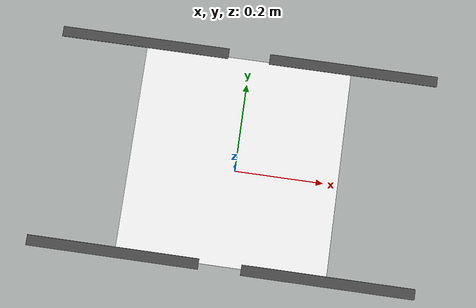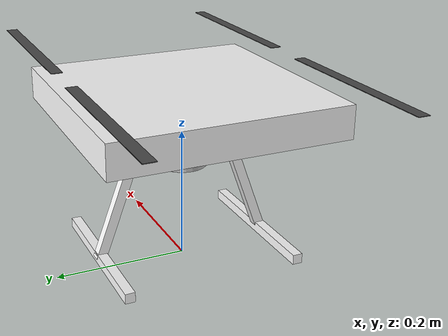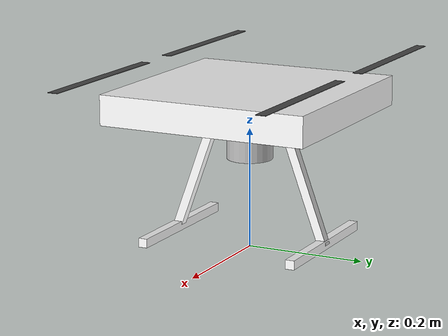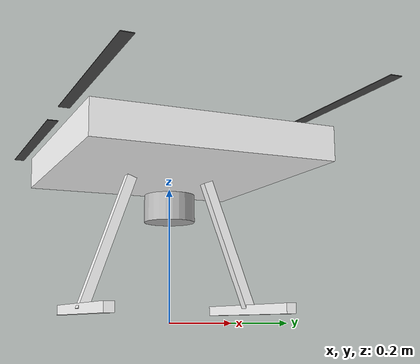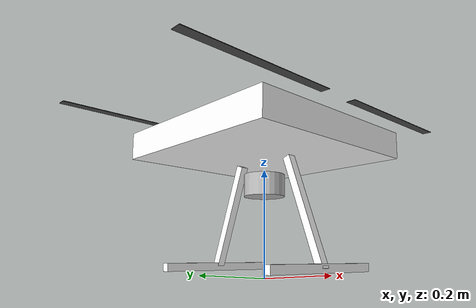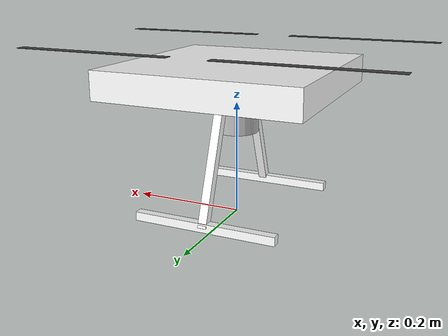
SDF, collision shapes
<?xml version="1.0" encoding="UTF-8"?>
<sdf version='1.9'>
  <model name='x500-Daave'>
    <include merge='true'>
      <uri>model://x500</uri>
      <plugin filename="gz-sim-odometry-publisher-system" name="gz::sim::systems::OdometryPublisher">
        <dimensions>3</dimensions>
        <odom_publish_frequency>50</odom_publish_frequency>
        <odom_frame>odom</odom_frame>
        <robot_base_frame>base_link</robot_base_frame>
        <!-- Align published frame with real base_link position of x500. -->
        <xyz_offset>0 0 .24</xyz_offset>
      </plugin>
    </include>

    <link name="lidar/base_link">
      <pose>0 0 0.15 0 0 0</pose>
      <inertial>
        <pose>0 0 0.0435 0 0 0</pose>
        <mass>0.190</mass>
        <inertia>
          <ixx>0.0001</ixx>
          <ixy>0</ixy>
          <ixz>0</ixz>
          <iyy>0.0001</iyy>
          <iyz>0</iyz>
          <izz>0.0001</izz>
        </inertia>
      </inertial>
      <collision name="collision">
        <pose>0 0 0.0205 0 0 0</pose>
        <geometry>
          <cylinder>
            <radius>0.038</radius>
            <length>0.041</length>
          </cylinder>
        </geometry>
      </collision>
      <visual name="visual">
        <pose>0 0 0.0205 0 0 0</pose>
        <geometry>
          <cylinder>
            <radius>0.038</radius>
            <length>0.041</length>
          </cylinder>
        </geometry>
      </visual>
      <sensor name="lidar" type="gpu_ray">
        <topic>scan</topic>
        <gz_frame_id>lidar</gz_frame_id>
        <pose>0 0 0.031 0 0 0</pose>
        <ray>
          <scan>
            <horizontal>
              <samples>360</samples>
              <resolution>1</resolution>
              <min_angle>-3.141592654</min_angle>
              <max_angle>3.141592654</max_angle>
            </horizontal>
          </scan>
          <range>
            <min>0.15</min>
            <max>10</max>
            <resolution>0.03</resolution>
          </range>
          <noise>
            <type>gaussian</type>
            <mean>0.0</mean>
            <stddev>0.001</stddev>
          </noise>
        </ray>
        <always_on>0</always_on>
        <update_rate>15</update_rate>
        <visualize>false</visualize>
      </sensor>
    </link>

    <joint name="LidarJoint" type="fixed">
      <parent>base_link</parent>
      <child>lidar/base_link</child>
    </joint>

  </model>
</sdf>

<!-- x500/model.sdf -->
<sdf version='1.9'>
  <model name='x500'>
    <pose>0 0 .24 0 0 0</pose>
    <self_collide>false</self_collide>
    <static>false</static>
    <link name="base_link">
      <inertial>
        <mass>2.0</mass>
        <inertia>
          <ixx>0.02166666666666667</ixx>
          <ixy>0</ixy>
          <ixz>0</ixz>
          <iyy>0.02166666666666667</iyy>
          <iyz>0</iyz>
          <izz>0.04000000000000001</izz>
        </inertia>
      </inertial>
      <gravity>true</gravity>
      <velocity_decay/>
      <visual name="base_link_visual">
        <pose>0 0 .025 0 0 3.141592654</pose>
        <geometry>
          <mesh>
            <scale>1 1 1</scale>
            <uri>model://x500/meshes/NXP-HGD-CF.dae</uri>
          </mesh>
        </geometry>
      </visual>
      <visual name="5010_motor_base_0">
        <pose>0.174 0.174 .032 0 0 -.45</pose>
        <geometry>
          <mesh>
            <scale>1 1 1</scale>
            <uri>model://x500/meshes/5010Base.dae</uri>
          </mesh>
        </geometry>
      </visual>
      <visual name="5010_motor_base_1">
        <pose>-0.174 0.174 .032 0 0 -.45</pose>
        <geometry>
          <mesh>
            <scale>1 1 1</scale>
            <uri>model://x500/meshes/5010Base.dae</uri>
          </mesh>
        </geometry>
      </visual>
      <visual name="5010_motor_base_2">
        <pose>0.174 -0.174 .032 0 0 -.45</pose>
        <geometry>
          <mesh>
            <scale>1 1 1</scale>
            <uri>model://x500/meshes/5010Base.dae</uri>
          </mesh>
        </geometry>
      </visual>
      <visual name="5010_motor_base_3">
        <pose>-0.174 -0.174 .032 0 0 -.45</pose>
        <geometry>
          <mesh>
            <scale>1 1 1</scale>
            <uri>model://x500/meshes/5010Base.dae</uri>
          </mesh>
        </geometry>
      </visual>
      <visual name="NXP_FMUK66_FRONT">
        <pose>0.047 .001 .043 1 0 1.57</pose>
        <cast_shadows>false</cast_shadows>
        <geometry>
          <plane>
            <normal>0 0 1</normal>
            <size>.013 .007</size>
          </plane>
        </geometry>
        <material>
          <diffuse>1.0 1.0 1.0</diffuse>
          <specular>1.0 1.0 1.0</specular>
          <pbr>
            <metal>
              <albedo_map>model://x500/materials/textures/nxp.png</albedo_map>
            </metal>
          </pbr>
        </material>
      </visual>
      <visual name="NXP_FMUK66_TOP">
        <pose>-0.023 0 .0515 0 0 -1.57</pose>
        <cast_shadows>false</cast_shadows>
        <geometry>
          <plane>
            <normal>0 0 1</normal>
            <size>.013 .007</size>
          </plane>
        </geometry>
        <material>
          <diffuse>1.0 1.0 1.0</diffuse>
          <specular>1.0 1.0 1.0</specular>
          <pbr>
            <metal>
              <albedo_map>model://x500/materials/textures/nxp.png</albedo_map>
            </metal>
          </pbr>
        </material>
      </visual>
      <visual name="RDDRONE_FMUK66_TOP">
        <pose>-.03 0 .0515 0 0 -1.57</pose>
        <cast_shadows>false</cast_shadows>
        <geometry>
          <plane>
            <normal>0 0 1</normal>
            <size>.032 .0034</size>
          </plane>
        </geometry>
        <material>
          <diffuse>1.0 1.0 1.0</diffuse>
          <specular>1.0 1.0 1.0</specular>
          <pbr>
            <metal>
              <albedo_map>model://x500/materials/textures/rd.png</albedo_map>
            </metal>
          </pbr>
        </material>
      </visual>
      <collision name="base_link_collision_0">
        <pose>0 0 .007 0 0 0</pose>
        <geometry>
          <box>
            <size>0.35355339059327373 0.35355339059327373 0.05</size>
          </box>
        </geometry>
        <surface>
          <contact>
            <ode>
              <min_depth>0.001</min_depth>
              <max_vel>0</max_vel>
            </ode>
          </contact>
          <friction>
            <ode/>
          </friction>
        </surface>
      </collision>
      <collision name="base_link_collision_1">
        <pose>0 -0.098 -.123 -0.35 0 0</pose>
        <geometry>
          <box>
            <size>0.015 0.015 0.21</size>
          </box>
        </geometry>
        <surface>
          <contact>
            <ode>
              <min_depth>0.001</min_depth>
              <max_vel>0</max_vel>
            </ode>
          </contact>
          <friction>
            <ode/>
          </friction>
        </surface>
      </collision>
      <collision name="base_link_collision_2">
        <pose>0 0.098 -.123 0.35 0 0</pose>
        <geometry>
          <box>
            <size>0.015 0.015 0.21</size>
          </box>
        </geometry>
        <surface>
          <contact>
            <ode>
              <min_depth>0.001</min_depth>
              <max_vel>0</max_vel>
            </ode>
          </contact>
          <friction>
            <ode/>
          </friction>
        </surface>
      </collision>
      <collision name="base_link_collision_3">
        <pose>0 -0.132 -.2195 0 0 0</pose>
        <geometry>
          <box>
            <size>0.25 0.015 0.015</size>
          </box>
        </geometry>
        <surface>
          <contact>
            <ode>
              <min_depth>0.001</min_depth>
              <max_vel>0</max_vel>
            </ode>
          </contact>
          <friction>
            <ode/>
          </friction>
        </surface>
      </collision>
      <collision name="base_link_collision_4">
        <pose>0 0.132 -.2195 0 0 0</pose>
        <geometry>
          <box>
            <size>0.25 0.015 0.015</size>
          </box>
        </geometry>
        <surface>
          <contact>
            <ode>
              <min_depth>0.001</min_depth>
              <max_vel>0</max_vel>
            </ode>
          </contact>
          <friction>
            <ode/>
          </friction>
        </surface>
      </collision>
      <sensor name="air_pressure_sensor" type="air_pressure">
        <always_on>1</always_on>
        <update_rate>50</update_rate>
        <air_pressure>
          <pressure>
            <noise type="gaussian">
              <mean>0</mean>
              <stddev>0.01</stddev>
            </noise>
          </pressure>
        </air_pressure>
      </sensor>
      <sensor name="imu_sensor" type="imu">
        <always_on>1</always_on>
        <update_rate>250</update_rate>
      </sensor>
    </link>
    <link name="rotor_0">
      <gravity>true</gravity>
      <self_collide>false</self_collide>
      <velocity_decay/>
      <pose>0.174 -0.174 0.06 0 0 0</pose>
      <inertial>
          <mass>0.016076923076923075</mass>
          <inertia>
            <ixx>3.8464910483993325e-07</ixx>
            <iyy>2.6115851691700804e-05</iyy>
            <izz>2.649858234714004e-05</izz>
          </inertia>
        </inertial>
      <visual name="rotor_0_visual">
        <pose>-0.022 -0.14638461538461536 -0.016 0 0 0</pose>
        <geometry>
          <mesh>
            <scale>0.8461538461538461 0.8461538461538461 0.8461538461538461</scale>
            <uri>model://x500/meshes/1345_prop_ccw.stl</uri>
          </mesh>
        </geometry>
        <material>
          <script>
            <name>Gazebo/DarkGrey</name>
            <uri>file://media/materials/scripts/gazebo.material</uri>
          </script>
        </material>
      </visual>
      <visual name="rotor_0_visual_motor_bell">
        <pose>0 0 -.032 0 0 0</pose>
        <geometry>
          <mesh>
            <scale>1 1 1</scale>
            <uri>model://x500/meshes/5010Bell.dae</uri>
          </mesh>
        </geometry>
      </visual>
      <collision name="rotor_0_collision">
        <pose>0 0 0 0 0 0 </pose>
        <geometry>
          <box>
            <size>0.2792307692307692 0.016923076923076923 0.0008461538461538462</size>
          </box>
        </geometry>
        <surface>
          <contact>
            <ode>
              <min_depth>0.001</min_depth>
              <max_vel>0</max_vel>
            </ode>
          </contact>
          <friction>
            <ode/>
          </friction>
        </surface>
      </collision>
    </link>
    <joint name="rotor_0_joint" type="revolute">
      <parent>base_link</parent>
      <child>rotor_0</child>
      <axis>
        <xyz>0 0 1</xyz>
        <limit>
          <lower>-1e+16</lower>
          <upper>1e+16</upper>
        </limit>
        <dynamics>
          <spring_reference>0</spring_reference>
          <spring_stiffness>0</spring_stiffness>
        </dynamics>
      </axis>
    </joint>
    <link name="rotor_1">
      <gravity>true</gravity>
      <self_collide>false</self_collide>
      <velocity_decay/>
      <pose>-0.174 0.174 0.06 0 0 0</pose>
      <inertial>
          <mass>0.016076923076923075</mass>
          <inertia>
            <ixx>3.8464910483993325e-07</ixx>
            <iyy>2.6115851691700804e-05</iyy>
            <izz>2.649858234714004e-05</izz>
          </inertia>
        </inertial>
      <visual name="rotor_1_visual">
        <pose>-0.022 -0.14638461538461536 -0.016 0 0 0</pose>
        <geometry>
          <mesh>
            <scale>0.8461538461538461 0.8461538461538461 0.8461538461538461</scale>
            <uri>model://x500/meshes/1345_prop_ccw.stl</uri>
          </mesh>
        </geometry>
        <material>
          <script>
            <name>Gazebo/DarkGrey</name>
            <uri>file://media/materials/scripts/gazebo.material</uri>
          </script>
        </material>
      </visual>
      <visual name="rotor_1_visual_motor_top">
        <pose>0 0 -.032 0 0 0</pose>
        <geometry>
          <mesh>
            <scale>1 1 1</scale>
            <uri>model://x500/meshes/5010Bell.dae</uri>
          </mesh>
        </geometry>
      </visual>
      <collision name="rotor_1_collision">
        <pose>0 0 0 0 0 0 </pose>
        <geometry>
          <box>
            <size>0.2792307692307692 0.016923076923076923 0.0008461538461538462</size>
          </box>
        </geometry>
        <surface>
          <contact>
            <ode>
              <min_depth>0.001</min_depth>
              <max_vel>0</max_vel>
            </ode>
          </contact>
          <friction>
            <ode/>
          </friction>
        </surface>
      </collision>
    </link>
    <joint name="rotor_1_joint" type="revolute">
      <parent>base_link</parent>
      <child>rotor_1</child>
      <axis>
        <xyz>0 0 1</xyz>
        <limit>
          <lower>-1e+16</lower>
          <upper>1e+16</upper>
        </limit>
        <dynamics>
          <spring_reference>0</spring_reference>
          <spring_stiffness>0</spring_stiffness>
        </dynamics>
      </axis>
    </joint>
    <link name="rotor_2">
      <gravity>true</gravity>
      <self_collide>false</self_collide>
      <velocity_decay/>
      <pose>0.174 0.174 0.06 0 0 0</pose>
      <inertial>
          <mass>0.016076923076923075</mass>
          <inertia>
            <ixx>3.8464910483993325e-07</ixx>
            <iyy>2.6115851691700804e-05</iyy>
            <izz>2.649858234714004e-05</izz>
          </inertia>
        </inertial>
      <visual name="rotor_2_visual">
        <pose>-0.022 -0.14638461538461536 -0.016 0 0 0</pose>
        <geometry>
          <mesh>
            <scale>0.8461538461538461 0.8461538461538461 0.8461538461538461</scale>
            <uri>model://x500/meshes/1345_prop_cw.stl</uri>
          </mesh>
        </geometry>
        <material>
          <script>
            <name>Gazebo/DarkGrey</name>
            <uri>file://media/materials/scripts/gazebo.material</uri>
          </script>
        </material>
      </visual>
      <visual name="rotor_2_visual_motor_top">
        <pose>0 0 -.032 0 0 0</pose>
        <geometry>
          <mesh>
            <scale>1 1 1</scale>
            <uri>model://x500/meshes/5010Bell.dae</uri>
          </mesh>
        </geometry>
      </visual>
      <collision name="rotor_2_collision">
        <pose>0 0 0 0 0 0 </pose>
        <geometry>
          <box>
            <size>0.2792307692307692 0.016923076923076923 0.0008461538461538462</size>
          </box>
        </geometry>
        <surface>
          <contact>
            <ode>
              <min_depth>0.001</min_depth>
              <max_vel>0</max_vel>
            </ode>
          </contact>
          <friction>
            <ode/>
          </friction>
        </surface>
      </collision>
    </link>
    <joint name="rotor_2_joint" type="revolute">
      <parent>base_link</parent>
      <child>rotor_2</child>
      <axis>
        <xyz>0 0 1</xyz>
        <limit>
          <lower>-1e+16</lower>
          <upper>1e+16</upper>
        </limit>
        <dynamics>
          <spring_reference>0</spring_reference>
          <spring_stiffness>0</spring_stiffness>
        </dynamics>
      </axis>
    </joint>
    <link name="rotor_3">
      <gravity>true</gravity>
      <self_collide>false</self_collide>
      <velocity_decay/>
      <pose>-0.174 -0.174 0.06 0 0 0</pose>
      <inertial>
          <mass>0.016076923076923075</mass>
          <inertia>
            <ixx>3.8464910483993325e-07</ixx>
            <iyy>2.6115851691700804e-05</iyy>
            <izz>2.649858234714004e-05</izz>
          </inertia>
        </inertial>
      <visual name="rotor_3_visual">
        <pose>-0.022 -0.14638461538461536 -0.016 0 0 0</pose>
        <geometry>
          <mesh>
            <scale>0.8461538461538461 0.8461538461538461 0.8461538461538461</scale>
            <uri>model://x500/meshes/1345_prop_cw.stl</uri>
          </mesh>
        </geometry>
        <material>
          <script>
            <name>Gazebo/DarkGrey</name>
            <uri>file://media/materials/scripts/gazebo.material</uri>
          </script>
        </material>
      </visual>
      <visual name="rotor_3_visual_motor_top">
        <pose>0 0 -.032 0 0 0</pose>
        <geometry>
          <mesh>
            <scale>1 1 1</scale>
            <uri>model://x500/meshes/5010Bell.dae</uri>
          </mesh>
        </geometry>
      </visual>
      <collision name="rotor_3_collision">
        <pose>0 0 0 0 0 0 </pose>
        <geometry>
          <box>
            <size>0.2792307692307692 0.016923076923076923 0.0008461538461538462</size>
          </box>
        </geometry>
        <surface>
          <contact>
            <ode>
              <min_depth>0.001</min_depth>
              <max_vel>0</max_vel>
            </ode>
          </contact>
          <friction>
            <ode/>
          </friction>
        </surface>
      </collision>
    </link>
    <joint name="rotor_3_joint" type="revolute">
      <parent>base_link</parent>
      <child>rotor_3</child>
      <axis>
        <xyz>0 0 1</xyz>
        <limit>
          <lower>-1e+16</lower>
          <upper>1e+16</upper>
        </limit>
        <dynamics>
          <spring_reference>0</spring_reference>
          <spring_stiffness>0</spring_stiffness>
        </dynamics>
      </axis>
    </joint>
   <plugin filename="ignition-gazebo-multicopter-motor-model-system" name="ignition::gazebo::systems::MulticopterMotorModel">
      <jointName>rotor_0_joint</jointName>
      <linkName>rotor_0</linkName>
      <turningDirection>ccw</turningDirection>
      <timeConstantUp>0.0125</timeConstantUp>
      <timeConstantDown>0.025</timeConstantDown>
      <maxRotVelocity>1000.0</maxRotVelocity>
      <motorConstant>8.54858e-06</motorConstant>
      <momentConstant>0.016</momentConstant>
      <commandSubTopic>command/motor_speed</commandSubTopic>
      <motorNumber>0</motorNumber>
      <rotorDragCoefficient>8.06428e-05</rotorDragCoefficient>
      <rollingMomentCoefficient>1e-06</rollingMomentCoefficient>
      <rotorVelocitySlowdownSim>10</rotorVelocitySlowdownSim>
      <motorType>velocity</motorType>
    </plugin>
    <plugin filename="gz-sim-multicopter-motor-model-system" name="gz::sim::systems::MulticopterMotorModel">
      <jointName>rotor_1_joint</jointName>
      <linkName>rotor_1</linkName>
      <turningDirection>ccw</turningDirection>
      <timeConstantUp>0.0125</timeConstantUp>
      <timeConstantDown>0.025</timeConstantDown>
      <maxRotVelocity>1000.0</maxRotVelocity>
      <motorConstant>8.54858e-06</motorConstant>
      <momentConstant>0.016</momentConstant>
      <commandSubTopic>command/motor_speed</commandSubTopic>
      <motorNumber>1</motorNumber>
      <rotorDragCoefficient>8.06428e-05</rotorDragCoefficient>
      <rollingMomentCoefficient>1e-06</rollingMomentCoefficient>
      <rotorVelocitySlowdownSim>10</rotorVelocitySlowdownSim>
      <motorType>velocity</motorType>
    </plugin>
    <plugin filename="gz-sim-multicopter-motor-model-system" name="gz::sim::systems::MulticopterMotorModel">
      <jointName>rotor_2_joint</jointName>
      <linkName>rotor_2</linkName>
      <turningDirection>cw</turningDirection>
      <timeConstantUp>0.0125</timeConstantUp>
      <timeConstantDown>0.025</timeConstantDown>
      <maxRotVelocity>1000.0</maxRotVelocity>
      <motorConstant>8.54858e-06</motorConstant>
      <momentConstant>0.016</momentConstant>
      <commandSubTopic>command/motor_speed</commandSubTopic>
      <motorNumber>2</motorNumber>
      <rotorDragCoefficient>8.06428e-05</rotorDragCoefficient>
      <rollingMomentCoefficient>1e-06</rollingMomentCoefficient>
      <rotorVelocitySlowdownSim>10</rotorVelocitySlowdownSim>
      <motorType>velocity</motorType>
    </plugin>
    <plugin filename="gz-sim-multicopter-motor-model-system" name="gz::sim::systems::MulticopterMotorModel">
      <jointName>rotor_3_joint</jointName>
      <linkName>rotor_3</linkName>
      <turningDirection>cw</turningDirection>
      <timeConstantUp>0.0125</timeConstantUp>
      <timeConstantDown>0.025</timeConstantDown>
      <maxRotVelocity>1000.0</maxRotVelocity>
      <motorConstant>8.54858e-06</motorConstant>
      <momentConstant>0.016</momentConstant>
      <commandSubTopic>command/motor_speed</commandSubTopic>
      <motorNumber>3</motorNumber>
      <rotorDragCoefficient>8.06428e-05</rotorDragCoefficient>
      <rollingMomentCoefficient>1e-06</rollingMomentCoefficient>
      <rotorVelocitySlowdownSim>10</rotorVelocitySlowdownSim>
      <motorType>velocity</motorType>
    </plugin>
  </model>
</sdf>
